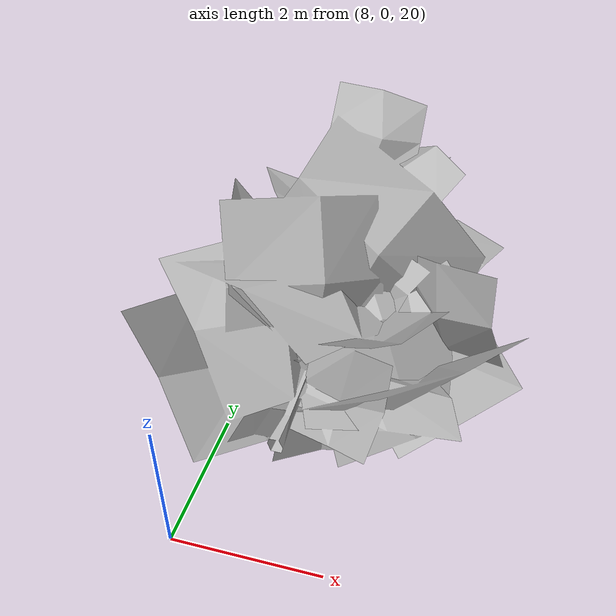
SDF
<?xml version="1.0" ?>
<sdf version="1.9">
  <model name="tree_01_4">
    <static>true</static>
    <link name="link">
      <collision name="collision">
        <pose>0 0 3.0 0 0 0</pose>
        <geometry>
          <box>
            <size>1.5 1.5 6.0</size>
          </box>
        </geometry>
      </collision>
      <visual name="visual">
        <geometry>
          <mesh>
            <uri>model://tree_01_4/meshes/Tree-01-4.obj</uri>
          </mesh>
        </geometry>
      </visual>
    </link>
  </model>
</sdf>
